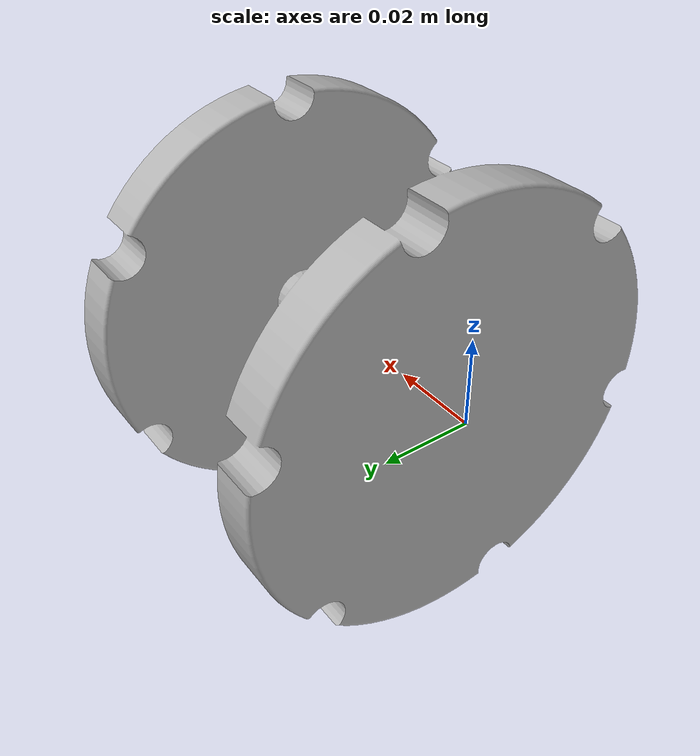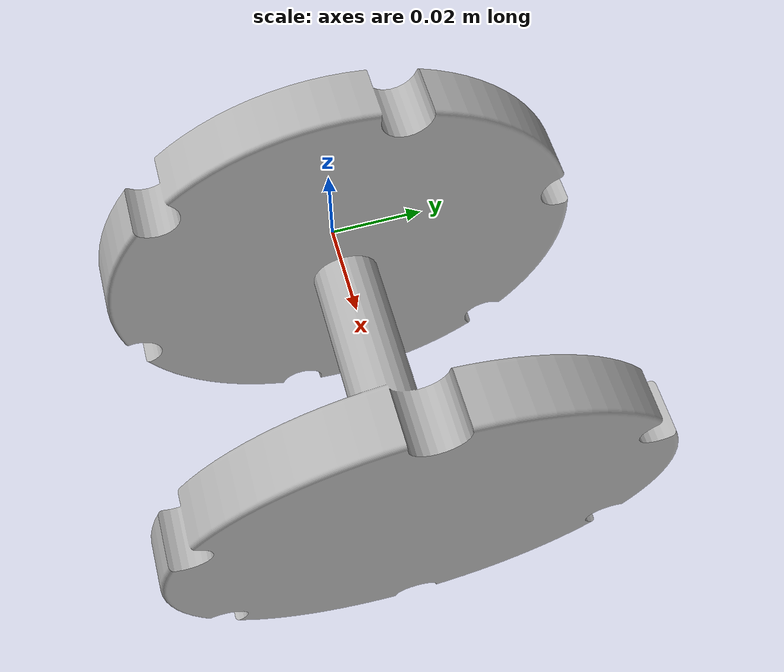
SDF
<?xml version="1.0" ?>
<sdf version="1.3">
  <model name="omni_wheel_case">
    <static>true</static>
    <link name="link">
      <pose>0 0 0 0 0 0</pose>
      <collision name="collision">
        <geometry>
          <mesh>
            <uri>model://omni_wheel_case/meshes/omni_wheel_case.dae</uri>
          </mesh>
        </geometry>
      </collision>
      <visual name="visual">
        <geometry>
          <mesh>
            <uri>model://omni_wheel_case/meshes/omni_wheel_case.dae</uri>
          </mesh>
        </geometry>
      </visual>
    </link>
  </model>
</sdf>
